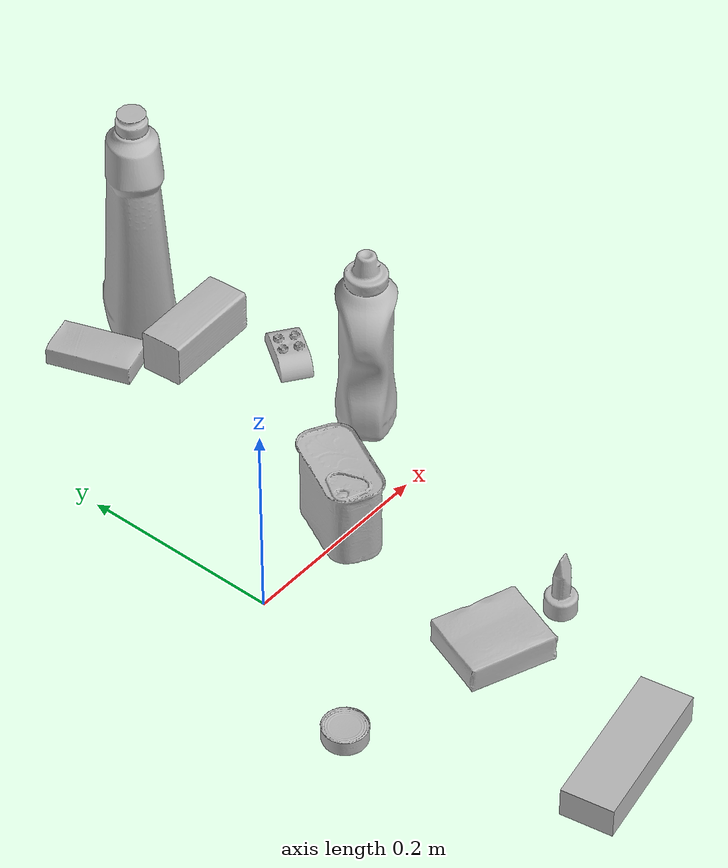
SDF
<sdf version="1.4">
  <world name="default">
    <light name="light1" type="point">
      <pose>0 0 1 0 0 0</pose>
      <diffuse>3 3 3 1</diffuse>
      <specular>3 3 3 1</specular>
    </light>
    <light name="light2" type="point">
      <pose>0 0.5 2 0 0 0</pose>
      <diffuse>1 1 1 1</diffuse>
      <specular>1 1 1 1</specular>
    </light>
    <light name="light3" type="point">
      <pose>0 0.5 2 0 0 0</pose>
      <diffuse>3 3 3 1</diffuse>
      <specular>3 3 3 1</specular>
    </light>
    <scene>
      <ambient>0.7 0.7 0.7</ambient>
    </scene>
    <model name="bottle1">
      <link name="link_bottle1">
        <collision name="default">
          <geometry>
            <mesh>
              <uri>model://bleach_cleanser/collision_meshes/collision.obj</uri>
              <scale>1.0 1.0 1.0</scale>
            </mesh>
          </geometry>
          <surface>
            <friction>
              <ode>
                <mu>0.5</mu>
                <mu2>0.5</mu2>
              </ode>
            </friction>
          <contact>
        <ode>
            <max_vel>0</max_vel>
            <min_depth>0.0001</min_depth>
            <kp>1e8</kp>
        </ode>
    </contact></surface>
        </collision>
        <visual name="default">
          <geometry>
            <mesh>
              <uri>model://bleach_cleanser/visual_meshes/visual.dae</uri>
              <scale>1.0 1.0 1.0</scale>
            </mesh>
          </geometry>
        </visual>
        <inertial>
          <mass>0.5324875712394714</mass>
          <pose>0.00012193183647468686 0.0037838825955986977 -0.024421609938144684 -0.07381669869164166 0.0004201168944593395 -0.0068750469260774934</pose>
          <inertia>
            <ixx>0.0025916947</ixx>
            <iyy>0.0024150796</iyy>
            <izz>0.00044311245</izz>
            <ixy>0</ixy>
            <ixz>0</ixz>
            <iyz>0</iyz>
          </inertia>
        </inertial>
      </link>
      <pose>0.22132842242717743 0.3476630449295044 0.12578418850898743 -0.0002009677560590826 1.6454764968918778e-05 2.4385982538160835</pose>
    </model>
    <model name="bottle2">
      <link name="link_bottle2">
        <collision name="default">
          <geometry>
            <mesh>
              <uri>model://mustard_bottle/collision_meshes/collision.obj</uri>
              <scale>1.0 1.0 1.0</scale>
            </mesh>
          </geometry>
          <surface>
            <friction>
              <ode>
                <mu>0.5</mu>
                <mu2>0.5</mu2>
              </ode>
            </friction>
          <contact>
        <ode>
            <max_vel>0</max_vel>
            <min_depth>0.0001</min_depth>
            <kp>1e8</kp>
        </ode>
    </contact></surface>
        </collision>
        <visual name="default">
          <geometry>
            <mesh>
              <uri>model://mustard_bottle/visual_meshes/visual.dae</uri>
              <scale>1.0 1.0 1.0</scale>
            </mesh>
          </geometry>
        </visual>
        <inertial>
          <mass>0.7762566804885864</mass>
          <pose>0.0005032453336752951 -0.0001564739941386506 -0.01747579127550125 0.0004182320844136383 0.0009465775961192733 0.024853776391442105</pose>
          <inertia>
            <ixx>0.0021555587</ixx>
            <iyy>0.0018913207</iyy>
            <izz>0.00056809856</izz>
            <ixy>0</ixy>
            <ixz>0</ixz>
            <iyz>0</iyz>
          </inertia>
        </inertial>
      </link>
      <pose>0.25242674350738525 0.09250976890325546 0.09615200757980347 1.4512332317369568e-05 1.6347893849896214e-05 -0.9180409966658392</pose>
    </model>
    <model name="toy1">
      <link name="link_toy1">
        <collision name="default">
          <geometry>
            <mesh>
              <uri>model://e_toy_airplane/collision_meshes/collision.obj</uri>
              <scale>1.0 1.0 1.0</scale>
            </mesh>
          </geometry>
          <surface>
            <friction>
              <ode>
                <mu>0.5</mu>
                <mu2>0.5</mu2>
              </ode>
            </friction>
          <contact>
        <ode>
            <max_vel>0</max_vel>
            <min_depth>0.0001</min_depth>
            <kp>1e8</kp>
        </ode>
    </contact></surface>
        </collision>
        <visual name="default">
          <geometry>
            <mesh>
              <uri>model://e_toy_airplane/visual_meshes/visual.dae</uri>
              <scale>1.0 1.0 1.0</scale>
            </mesh>
          </geometry>
        </visual>
        <inertial>
          <mass>0.01693064346909523</mass>
          <pose>0.00011740485206246376 -2.2482869098894298e-05 -0.011187203228473663 0.005518486263483037 0.009228306153066855 0.15041416456770357</pose>
          <inertia>
            <ixx>5.1674256e-06</ixx>
            <iyy>5.1145657e-06</iyy>
            <izz>1.5530146e-06</izz>
            <ixy>0</ixy>
            <ixz>0</ixz>
            <iyz>0</iyz>
          </inertia>
        </inertial>
      </link>
      <pose>0.16249802708625793 -0.2059689462184906 0.033212799578905106 1.6086282775790937e-05 -0.00042556191852344765 -1.5180069854832268</pose>
    </model>
    <model name="toy2">
      <link name="link_toy2">
        <collision name="default">
          <geometry>
            <mesh>
              <uri>model://a_lego_duplo/collision_meshes/collision.obj</uri>
              <scale>1.0 1.0 1.0</scale>
            </mesh>
          </geometry>
          <surface>
            <friction>
              <ode>
                <mu>0.5</mu>
                <mu2>0.5</mu2>
              </ode>
            </friction>
          <contact>
        <ode>
            <max_vel>0</max_vel>
            <min_depth>0.0001</min_depth>
            <kp>1e8</kp>
        </ode>
    </contact></surface>
        </collision>
        <visual name="default">
          <geometry>
            <mesh>
              <uri>model://a_lego_duplo/visual_meshes/visual.dae</uri>
              <scale>1.0 1.0 1.0</scale>
            </mesh>
          </geometry>
        </visual>
        <inertial>
          <mass>0.026311658322811127</mass>
          <pose>-0.000113377594971098 0.00018517566786613315 0.0003692609607242048 -0.014117022075399962 -0.00012566465015892618 6.142856652531641e-05</pose>
          <inertia>
            <ixx>3.3733654e-06</ixx>
            <iyy>7.557078e-06</iyy>
            <izz>9.361117e-06</izz>
            <ixy>0</ixy>
            <ixz>0</ixz>
            <iyz>0</iyz>
          </inertia>
        </inertial>
      </link>
      <pose>0.26375263929367065 0.19598467648029327 0.012112005613744259 1.1815183117847379e-07 -6.775400948087258e-07 -2.1699083426701478</pose>
    </model>
    <model name="can1">
      <link name="link_can1">
        <collision name="default">
          <geometry>
            <mesh>
              <uri>model://tuna_fish_can/collision_meshes/collision.obj</uri>
              <scale>0.5 0.5 0.5</scale>
            </mesh>
          </geometry>
          <surface>
            <friction>
              <ode>
                <mu>0.5</mu>
                <mu2>0.5</mu2>
              </ode>
            </friction>
          <contact>
        <ode>
            <max_vel>0</max_vel>
            <min_depth>0.0001</min_depth>
            <kp>1e8</kp>
        </ode>
    </contact></surface>
        </collision>
        <visual name="default">
          <geometry>
            <mesh>
              <uri>model://tuna_fish_can/visual_meshes/visual.dae</uri>
              <scale>0.5 0.5 0.5</scale>
            </mesh>
          </geometry>
        </visual>
        <inertial>
          <mass>0.025987863540649414</mass>
          <pose>-2.0361601855256595e-05 -7.256298886204604e-06 -0.0005269025568850338 -0.0017944787689317097 0.0001716279666079131 0.24054509142506303</pose>
          <inertia>
            <ixx>3.5135977e-06</ixx>
            <iyy>3.4989534e-06</iyy>
            <izz>6.0122675e-06</izz>
            <ixy>0</ixy>
            <ixz>0</ixz>
            <iyz>0</iyz>
          </inertia>
        </inertial>
      </link>
      <pose>-0.07728014141321182 -0.15879769623279572 0.00851999782025814 -3.9408362035231125e-08 -6.289186443883189e-09 0.03832391490988244</pose>
    </model>
    <model name="can2">
      <link name="link_can2">
        <collision name="default">
          <geometry>
            <mesh>
              <uri>model://potted_meat_can/collision_meshes/collision.obj</uri>
              <scale>1.0 1.0 1.0</scale>
            </mesh>
          </geometry>
          <surface>
            <friction>
              <ode>
                <mu>0.5</mu>
                <mu2>0.5</mu2>
              </ode>
            </friction>
          <contact>
        <ode>
            <max_vel>0</max_vel>
            <min_depth>0.0001</min_depth>
            <kp>1e8</kp>
        </ode>
    </contact></surface>
        </collision>
        <visual name="default">
          <geometry>
            <mesh>
              <uri>model://potted_meat_can/visual_meshes/visual.dae</uri>
              <scale>1.0 1.0 1.0</scale>
            </mesh>
          </geometry>
        </visual>
        <inertial>
          <mass>0.2732236087322235</mass>
          <pose>0.00022888141393195838 -5.989111741655506e-05 -0.0006367441383190453 -0.028093326615163196 -0.007232604646238421 0.015406262399643026</pose>
          <inertia>
            <ixx>0.0003514736</ixx>
            <iyy>0.00021354685</iyy>
            <izz>0.00025563012</izz>
            <ixy>0</ixy>
            <ixz>0</ixz>
            <iyz>0</iyz>
          </inertia>
        </inertial>
      </link>
      <pose>0.1168229952454567 0.009138704277575016 0.04212799668312073 -7.015811855516559e-08 -4.1607744368790234e-07 -0.4812331212430958</pose>
    </model>
    <model name="box1">
      <link name="link_box1">
        <collision name="default">
          <geometry>
            <mesh>
              <uri>model://gelatin_box/collision_meshes/collision.obj</uri>
              <scale>1.0 1.0 1.0</scale>
            </mesh>
          </geometry>
          <surface>
            <friction>
              <ode>
                <mu>0.5</mu>
                <mu2>0.5</mu2>
              </ode>
            </friction>
          <contact>
        <ode>
            <max_vel>0</max_vel>
            <min_depth>0.0001</min_depth>
            <kp>1e8</kp>
        </ode>
    </contact></surface>
        </collision>
        <visual name="default">
          <geometry>
            <mesh>
              <uri>model://gelatin_box/visual_meshes/visual.dae</uri>
              <scale>1.0 1.0 1.0</scale>
            </mesh>
          </geometry>
        </visual>
        <inertial>
          <mass>0.14974145591259003</mass>
          <pose>0.0004319618456065655 0.00011156871914863586 -0.0003640321083366871 -0.0010503719798216618 -0.004755819622564704 0.01644055760929568</pose>
          <inertia>
            <ixx>0.00010570526</ixx>
            <iyy>7.550471e-05</iyy>
            <izz>0.00016090693</izz>
            <ixy>0</ixy>
            <ixz>0</ixz>
            <iyz>0</iyz>
          </inertia>
        </inertial>
      </link>
      <pose>0.08593010902404785 -0.19130724668502808 0.015168309211730957 0.005597446082662876 -0.007304535309858971 1.2009883383849342</pose>
    </model>
    <model name="box2">
      <link name="link_box2">
        <collision name="default">
          <geometry>
            <mesh>
              <uri>model://sugar_box/collision_meshes/collision.obj</uri>
              <scale>0.5 0.5 0.5</scale>
            </mesh>
          </geometry>
          <surface>
            <friction>
              <ode>
                <mu>0.5</mu>
                <mu2>0.5</mu2>
              </ode>
            </friction>
          <contact>
        <ode>
            <max_vel>0</max_vel>
            <min_depth>0.0001</min_depth>
            <kp>1e8</kp>
        </ode>
    </contact></surface>
        </collision>
        <visual name="default">
          <geometry>
            <mesh>
              <uri>model://sugar_box/visual_meshes/visual.dae</uri>
              <scale>0.5 0.5 0.5</scale>
            </mesh>
          </geometry>
        </visual>
        <inertial>
          <mass>0.07143953442573547</mass>
          <pose>0.0005171863595023751 1.924554817378521e-05 -0.00018182402709499002 -0.0004046263588767038 0.0010506634057764815 0.0026153785560837986</pose>
          <inertia>
            <ixx>1.4880804e-05</ixx>
            <iyy>4.8097805e-05</iyy>
            <izz>5.757883e-05</izz>
            <ixy>0</ixy>
            <ixz>0</ixz>
            <iyz>0</iyz>
          </inertia>
        </inertial>
      </link>
      <pose>0.14519378542900085 0.334049791097641 0.011399304494261742 0.0007754810768920241 -0.02343236711505084 -1.2652673715770504</pose>
    </model>
    <model name="box3">
      <link name="link_box3">
        <collision name="default">
          <geometry>
            <mesh>
              <uri>model://jenga/collision_meshes/collision.obj</uri>
              <scale>1.0 1.0 1.0</scale>
            </mesh>
          </geometry>
          <surface>
            <friction>
              <ode>
                <mu>0.5</mu>
                <mu2>0.5</mu2>
              </ode>
            </friction>
          <contact>
        <ode>
            <max_vel>0</max_vel>
            <min_depth>0.0001</min_depth>
            <kp>1e8</kp>
        </ode>
    </contact></surface>
        </collision>
        <visual name="default">
          <geometry>
            <mesh>
              <uri>model://jenga/visual_meshes/visual.dae</uri>
              <scale>1.0 1.0 1.0</scale>
            </mesh>
          </geometry>
        </visual>
        <inertial>
          <mass>0.2564851939678192</mass>
          <pose>-2.502855807051674e-07 -0.00010250010382151231 -4.0923401684267446e-05 0.0 -7.342154049184251e-07 0.0</pose>
          <inertia>
            <ixx>7.097568e-05</ixx>
            <iyy>0.00048092927</iyy>
            <izz>0.0005134329</izz>
            <ixy>0</ixy>
            <ixz>0</ixz>
            <iyz>0</iyz>
          </inertia>
        </inertial>
      </link>
      <pose>0.04972127079963684 -0.3626957833766937 0.014999995008111 1.97669758238187e-08 8.11791412302944e-10 0.17548461205498173</pose>
    </model>
    <model name="box4">
      <link name="link_box4">
        <collision name="default">
          <geometry>
            <mesh>
              <uri>model://wood_block/collision_meshes/collision.obj</uri>
              <scale>0.5 0.5 0.5</scale>
            </mesh>
          </geometry>
          <surface>
            <friction>
              <ode>
                <mu>0.5</mu>
                <mu2>0.5</mu2>
              </ode>
            </friction>
          <contact>
        <ode>
            <max_vel>0</max_vel>
            <min_depth>0.0001</min_depth>
            <kp>1e8</kp>
        </ode>
    </contact></surface>
        </collision>
        <visual name="default">
          <geometry>
            <mesh>
              <uri>model://wood_block/visual_meshes/visual.dae</uri>
              <scale>0.5 0.5 0.5</scale>
            </mesh>
          </geometry>
        </visual>
        <inertial>
          <mass>0.2543213665485382</mass>
          <pose>-2.906657982748584e-06 -0.000285404734313488 0.00013204291462898254 -0.05220794665887619 -0.0051926956484831775 -0.006861378561045436</pose>
          <inertia>
            <ixx>8.508011e-05</ixx>
            <iyy>0.00026876814</iyy>
            <izz>0.00026776275</izz>
            <ixy>0</ixy>
            <ixz>0</ixz>
            <iyz>0</iyz>
          </inertia>
        </inertial>
      </link>
      <pose>0.21874941885471344 0.27466779947280884 0.0226292684674263 -0.0052086093970880884 0.005718764491352968 0.057932946243133214</pose>
    </model>
  <physics type="ode">
      <max_contacts>50</max_contacts>
      <ode>
        <solver>
          <type>quick</type>
          <iters>75</iters>
        </solver>
        <constraints>
          <contact_max_correcting_vel>0</contact_max_correcting_vel>
          <contact_surface_layer>0</contact_surface_layer>
        </constraints>
      </ode>
    </physics></world>
</sdf>
